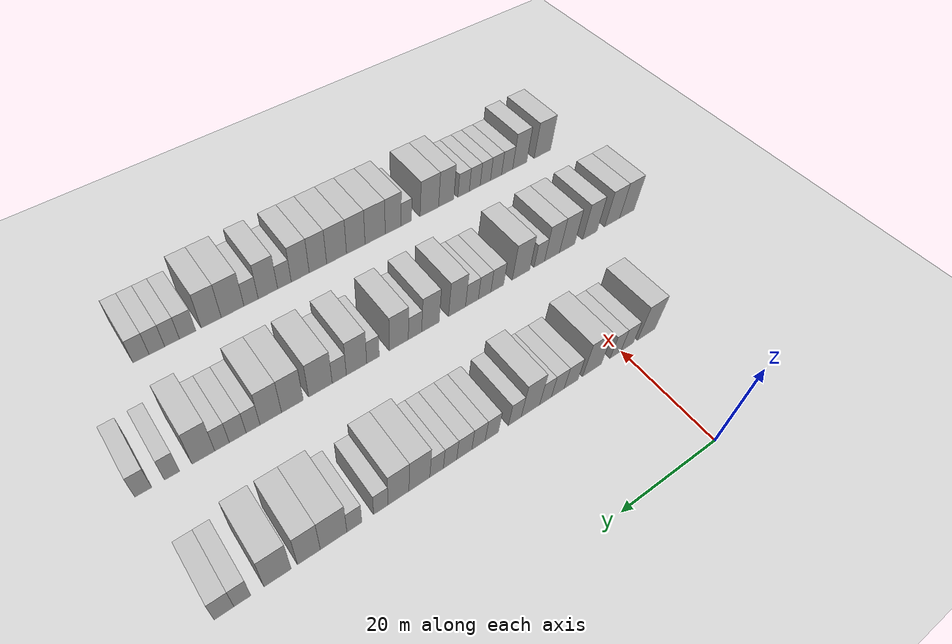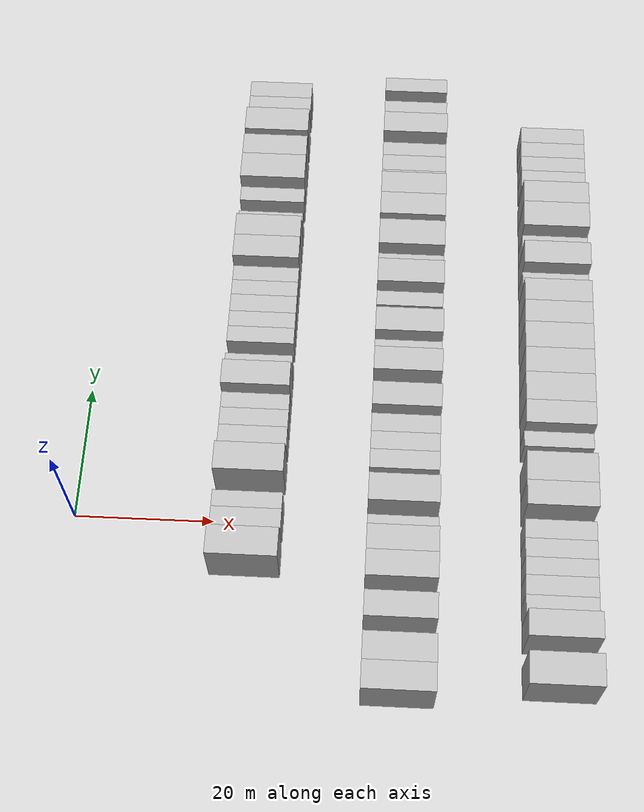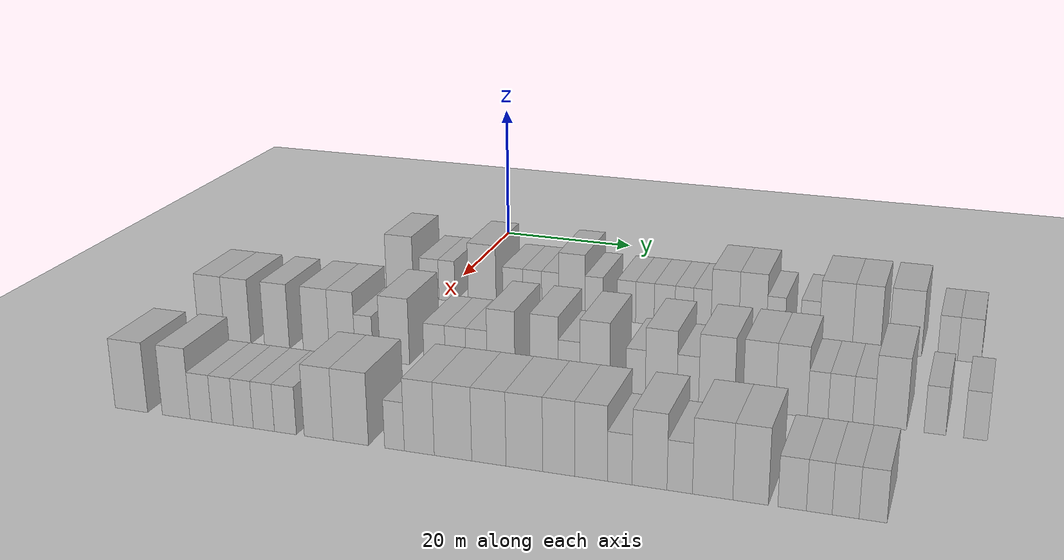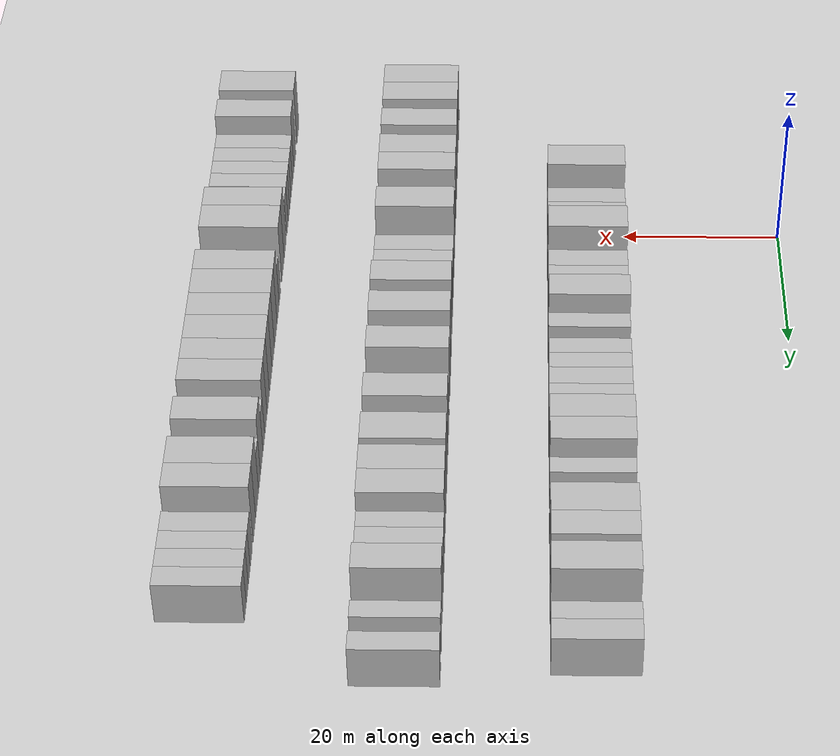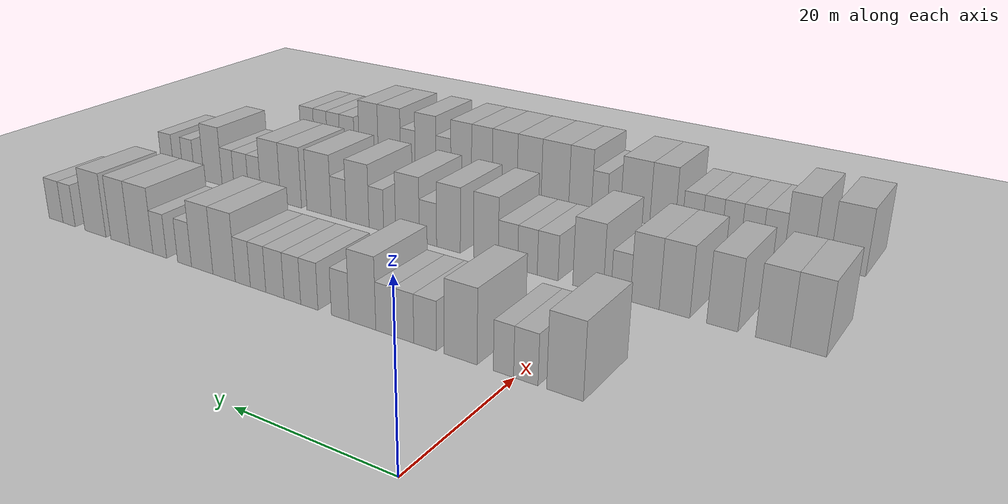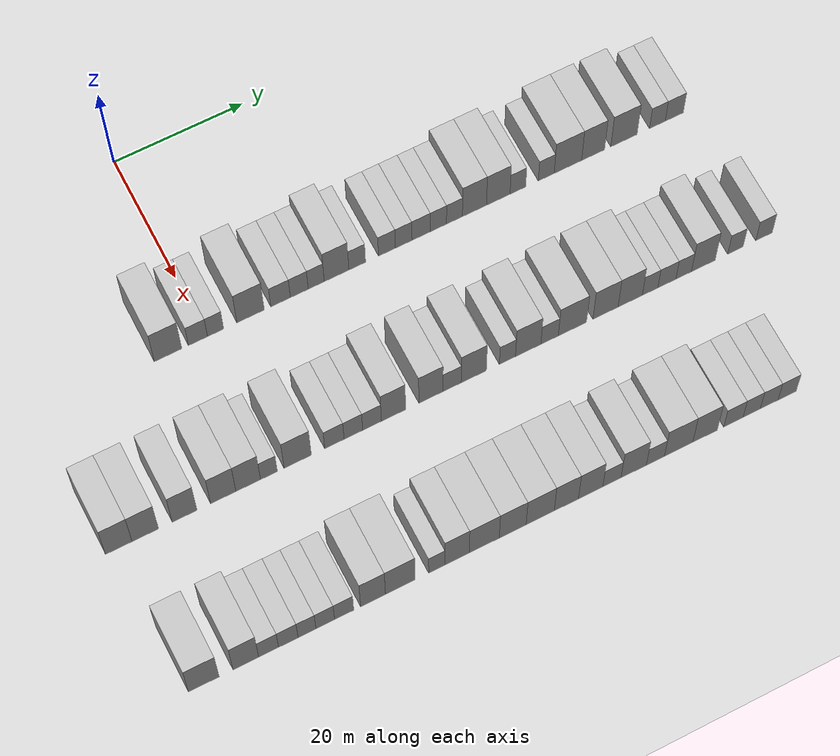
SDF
<sdf version="1.6">
 <world name="default">
  <include><name>ground_plane_1</name><uri>model://HANNAS_ground_plane</uri></include>
  <model name="building_83">
   <static>1</static>
   <pose>25.0000 -5.8344 0 0.000000 0.000000 0.000000</pose>
   <link name="link">
    <pose>0 0 4.50 0 0 0</pose>
    <collision name="collision"><geometry><box><size>10.0000 4.1621 9.0000</size></box></geometry></collision>
    <visual name="visual">
     <cast_shadows>0</cast_shadows>
     <geometry><box><size>10.0000 4.1621 9.0000</size></box></geometry>
     <material>
      <script>
       <uri>model://HANNAS_wall/materials/scripts</uri>
       <uri>model://HANNAS_wall/materials/textures</uri>
       <name>vrc/HANNAS_wall</name>
      </script>
     </material>
    </visual>
   </link>
  </model>
  <model name="building_84">
   <static>1</static>
   <pose>25.0000 -1.3093 0 0.000000 0.000000 0.000000</pose>
   <link name="link">
    <pose>0 0 3.00 0 0 0</pose>
    <collision name="collision"><geometry><box><size>10.0000 2.8879 6.0000</size></box></geometry></collision>
    <visual name="visual">
     <cast_shadows>0</cast_shadows>
     <geometry><box><size>10.0000 2.8879 6.0000</size></box></geometry>
     <material>
      <script>
       <uri>model://HANNAS_wall/materials/scripts</uri>
       <uri>model://HANNAS_wall/materials/textures</uri>
       <name>vrc/HANNAS_wall</name>
      </script>
     </material>
    </visual>
   </link>
  </model>
  <model name="building_85">
   <static>1</static>
   <pose>25.0000 1.3610 0 0.000000 0.000000 0.000000</pose>
   <link name="link">
    <pose>0 0 3.00 0 0 0</pose>
    <collision name="collision"><geometry><box><size>10.0000 2.4527 6.0000</size></box></geometry></collision>
    <visual name="visual">
     <cast_shadows>0</cast_shadows>
     <geometry><box><size>10.0000 2.4527 6.0000</size></box></geometry>
     <material>
      <script>
       <uri>model://HANNAS_wall/materials/scripts</uri>
       <uri>model://HANNAS_wall/materials/textures</uri>
       <name>vrc/HANNAS_wall</name>
      </script>
     </material>
    </visual>
   </link>
  </model>
  <model name="building_86">
   <static>1</static>
   <pose>25.0000 6.6766 0 0.000000 0.000000 0.000000</pose>
   <link name="link">
    <pose>0 0 4.50 0 0 0</pose>
    <collision name="collision"><geometry><box><size>10.0000 4.1785 9.0000</size></box></geometry></collision>
    <visual name="visual">
     <cast_shadows>0</cast_shadows>
     <geometry><box><size>10.0000 4.1785 9.0000</size></box></geometry>
     <material>
      <script>
       <uri>model://HANNAS_wall/materials/scripts</uri>
       <uri>model://HANNAS_wall/materials/textures</uri>
       <name>vrc/HANNAS_wall</name>
      </script>
     </material>
    </visual>
   </link>
  </model>
  <model name="building_87">
   <static>1</static>
   <pose>25.0000 11.2618 0 0.000000 0.000000 0.000000</pose>
   <link name="link">
    <pose>0 0 3.00 0 0 0</pose>
    <collision name="collision"><geometry><box><size>10.0000 2.9920 6.0000</size></box></geometry></collision>
    <visual name="visual">
     <cast_shadows>0</cast_shadows>
     <geometry><box><size>10.0000 2.9920 6.0000</size></box></geometry>
     <material>
      <script>
       <uri>model://HANNAS_wall/materials/scripts</uri>
       <uri>model://HANNAS_wall/materials/textures</uri>
       <name>vrc/HANNAS_wall</name>
      </script>
     </material>
    </visual>
   </link>
  </model>
  <model name="building_88">
   <static>1</static>
   <pose>25.0000 14.1272 0 0.000000 0.000000 0.000000</pose>
   <link name="link">
    <pose>0 0 3.00 0 0 0</pose>
    <collision name="collision"><geometry><box><size>10.0000 2.7387 6.0000</size></box></geometry></collision>
    <visual name="visual">
     <cast_shadows>0</cast_shadows>
     <geometry><box><size>10.0000 2.7387 6.0000</size></box></geometry>
     <material>
      <script>
       <uri>model://HANNAS_wall/materials/scripts</uri>
       <uri>model://HANNAS_wall/materials/textures</uri>
       <name>vrc/HANNAS_wall</name>
      </script>
     </material>
    </visual>
   </link>
  </model>
  <model name="building_89">
   <static>1</static>
   <pose>25.0000 16.7258 0 0.000000 0.000000 0.000000</pose>
   <link name="link">
    <pose>0 0 3.00 0 0 0</pose>
    <collision name="collision"><geometry><box><size>10.0000 2.4585 6.0000</size></box></geometry></collision>
    <visual name="visual">
     <cast_shadows>0</cast_shadows>
     <geometry><box><size>10.0000 2.4585 6.0000</size></box></geometry>
     <material>
      <script>
       <uri>model://HANNAS_wall/materials/scripts</uri>
       <uri>model://HANNAS_wall/materials/textures</uri>
       <name>vrc/HANNAS_wall</name>
      </script>
     </material>
    </visual>
   </link>
  </model>
  <model name="building_90">
   <static>1</static>
   <pose>25.0000 19.8600 0 0.000000 0.000000 0.000000</pose>
   <link name="link">
    <pose>0 0 4.50 0 0 0</pose>
    <collision name="collision"><geometry><box><size>10.0000 3.8098 9.0000</size></box></geometry></collision>
    <visual name="visual">
     <cast_shadows>0</cast_shadows>
     <geometry><box><size>10.0000 3.8098 9.0000</size></box></geometry>
     <material>
      <script>
       <uri>model://HANNAS_wall/materials/scripts</uri>
       <uri>model://HANNAS_wall/materials/textures</uri>
       <name>vrc/HANNAS_wall</name>
      </script>
     </material>
    </visual>
   </link>
  </model>
  <model name="building_91">
   <static>1</static>
   <pose>25.0000 23.0571 0 0.000000 0.000000 0.000000</pose>
   <link name="link">
    <pose>0 0 3.00 0 0 0</pose>
    <collision name="collision"><geometry><box><size>10.0000 2.5845 6.0000</size></box></geometry></collision>
    <visual name="visual">
     <cast_shadows>0</cast_shadows>
     <geometry><box><size>10.0000 2.5845 6.0000</size></box></geometry>
     <material>
      <script>
       <uri>model://HANNAS_wall/materials/scripts</uri>
       <uri>model://HANNAS_wall/materials/textures</uri>
       <name>vrc/HANNAS_wall</name>
      </script>
     </material>
    </visual>
   </link>
  </model>
  <model name="building_92">
   <static>1</static>
   <pose>25.0000 27.6592 0 0.000000 0.000000 0.000000</pose>
   <link name="link">
    <pose>0 0 3.00 0 0 0</pose>
    <collision name="collision"><geometry><box><size>10.0000 2.6197 6.0000</size></box></geometry></collision>
    <visual name="visual">
     <cast_shadows>0</cast_shadows>
     <geometry><box><size>10.0000 2.6197 6.0000</size></box></geometry>
     <material>
      <script>
       <uri>model://HANNAS_wall/materials/scripts</uri>
       <uri>model://HANNAS_wall/materials/textures</uri>
       <name>vrc/HANNAS_wall</name>
      </script>
     </material>
    </visual>
   </link>
  </model>
  <model name="building_93">
   <static>1</static>
   <pose>25.0000 30.2643 0 0.000000 0.000000 0.000000</pose>
   <link name="link">
    <pose>0 0 3.00 0 0 0</pose>
    <collision name="collision"><geometry><box><size>10.0000 2.5906 6.0000</size></box></geometry></collision>
    <visual name="visual">
     <cast_shadows>0</cast_shadows>
     <geometry><box><size>10.0000 2.5906 6.0000</size></box></geometry>
     <material>
      <script>
       <uri>model://HANNAS_wall/materials/scripts</uri>
       <uri>model://HANNAS_wall/materials/textures</uri>
       <name>vrc/HANNAS_wall</name>
      </script>
     </material>
    </visual>
   </link>
  </model>
  <model name="building_94">
   <static>1</static>
   <pose>25.0000 33.0000 0 0.000000 0.000000 0.000000</pose>
   <link name="link">
    <pose>0 0 3.00 0 0 0</pose>
    <collision name="collision"><geometry><box><size>10.0000 2.8807 6.0000</size></box></geometry></collision>
    <visual name="visual">
     <cast_shadows>0</cast_shadows>
     <geometry><box><size>10.0000 2.8807 6.0000</size></box></geometry>
     <material>
      <script>
       <uri>model://HANNAS_wall/materials/scripts</uri>
       <uri>model://HANNAS_wall/materials/textures</uri>
       <name>vrc/HANNAS_wall</name>
      </script>
     </material>
    </visual>
   </link>
  </model>
  <model name="building_95">
   <static>1</static>
   <pose>25.0000 35.6938 0 0.000000 0.000000 0.000000</pose>
   <link name="link">
    <pose>0 0 3.00 0 0 0</pose>
    <collision name="collision"><geometry><box><size>10.0000 2.5071 6.0000</size></box></geometry></collision>
    <visual name="visual">
     <cast_shadows>0</cast_shadows>
     <geometry><box><size>10.0000 2.5071 6.0000</size></box></geometry>
     <material>
      <script>
       <uri>model://HANNAS_wall/materials/scripts</uri>
       <uri>model://HANNAS_wall/materials/textures</uri>
       <name>vrc/HANNAS_wall</name>
      </script>
     </material>
    </visual>
   </link>
  </model>
  <model name="building_96">
   <static>1</static>
   <pose>25.0000 38.1934 0 0.000000 0.000000 0.000000</pose>
   <link name="link">
    <pose>0 0 3.00 0 0 0</pose>
    <collision name="collision"><geometry><box><size>10.0000 2.4921 6.0000</size></box></geometry></collision>
    <visual name="visual">
     <cast_shadows>0</cast_shadows>
     <geometry><box><size>10.0000 2.4921 6.0000</size></box></geometry>
     <material>
      <script>
       <uri>model://HANNAS_wall/materials/scripts</uri>
       <uri>model://HANNAS_wall/materials/textures</uri>
       <name>vrc/HANNAS_wall</name>
      </script>
     </material>
    </visual>
   </link>
  </model>
  <model name="building_97">
   <static>1</static>
   <pose>25.0000 41.3327 0 0.000000 0.000000 0.000000</pose>
   <link name="link">
    <pose>0 0 4.50 0 0 0</pose>
    <collision name="collision"><geometry><box><size>10.0000 3.7866 9.0000</size></box></geometry></collision>
    <visual name="visual">
     <cast_shadows>0</cast_shadows>
     <geometry><box><size>10.0000 3.7866 9.0000</size></box></geometry>
     <material>
      <script>
       <uri>model://HANNAS_wall/materials/scripts</uri>
       <uri>model://HANNAS_wall/materials/textures</uri>
       <name>vrc/HANNAS_wall</name>
      </script>
     </material>
    </visual>
   </link>
  </model>
  <model name="building_98">
   <static>1</static>
   <pose>25.0000 45.0840 0 0.000000 0.000000 0.000000</pose>
   <link name="link">
    <pose>0 0 4.50 0 0 0</pose>
    <collision name="collision"><geometry><box><size>10.0000 3.7160 9.0000</size></box></geometry></collision>
    <visual name="visual">
     <cast_shadows>0</cast_shadows>
     <geometry><box><size>10.0000 3.7160 9.0000</size></box></geometry>
     <material>
      <script>
       <uri>model://HANNAS_wall/materials/scripts</uri>
       <uri>model://HANNAS_wall/materials/textures</uri>
       <name>vrc/HANNAS_wall</name>
      </script>
     </material>
    </visual>
   </link>
  </model>
  <model name="building_99">
   <static>1</static>
   <pose>25.0000 48.1846 0 0.000000 0.000000 0.000000</pose>
   <link name="link">
    <pose>0 0 3.00 0 0 0</pose>
    <collision name="collision"><geometry><box><size>10.0000 2.4852 6.0000</size></box></geometry></collision>
    <visual name="visual">
     <cast_shadows>0</cast_shadows>
     <geometry><box><size>10.0000 2.4852 6.0000</size></box></geometry>
     <material>
      <script>
       <uri>model://HANNAS_wall/materials/scripts</uri>
       <uri>model://HANNAS_wall/materials/textures</uri>
       <name>vrc/HANNAS_wall</name>
      </script>
     </material>
    </visual>
   </link>
  </model>
  <model name="building_100">
   <static>1</static>
   <pose>25.0000 52.6859 0 0.000000 0.000000 0.000000</pose>
   <link name="link">
    <pose>0 0 3.00 0 0 0</pose>
    <collision name="collision"><geometry><box><size>10.0000 2.5173 6.0000</size></box></geometry></collision>
    <visual name="visual">
     <cast_shadows>0</cast_shadows>
     <geometry><box><size>10.0000 2.5173 6.0000</size></box></geometry>
     <material>
      <script>
       <uri>model://HANNAS_wall/materials/scripts</uri>
       <uri>model://HANNAS_wall/materials/textures</uri>
       <name>vrc/HANNAS_wall</name>
      </script>
     </material>
    </visual>
   </link>
  </model>
  <model name="building_101">
   <static>1</static>
   <pose>25.0000 56.1383 0 0.000000 0.000000 0.000000</pose>
   <link name="link">
    <pose>0 0 4.50 0 0 0</pose>
    <collision name="collision"><geometry><box><size>10.0000 4.3876 9.0000</size></box></geometry></collision>
    <visual name="visual">
     <cast_shadows>0</cast_shadows>
     <geometry><box><size>10.0000 4.3876 9.0000</size></box></geometry>
     <material>
      <script>
       <uri>model://HANNAS_wall/materials/scripts</uri>
       <uri>model://HANNAS_wall/materials/textures</uri>
       <name>vrc/HANNAS_wall</name>
      </script>
     </material>
    </visual>
   </link>
  </model>
  <model name="building_102">
   <static>1</static>
   <pose>25.0000 60.1665 0 0.000000 0.000000 0.000000</pose>
   <link name="link">
    <pose>0 0 4.50 0 0 0</pose>
    <collision name="collision"><geometry><box><size>10.0000 3.6688 9.0000</size></box></geometry></collision>
    <visual name="visual">
     <cast_shadows>0</cast_shadows>
     <geometry><box><size>10.0000 3.6688 9.0000</size></box></geometry>
     <material>
      <script>
       <uri>model://HANNAS_wall/materials/scripts</uri>
       <uri>model://HANNAS_wall/materials/textures</uri>
       <name>vrc/HANNAS_wall</name>
      </script>
     </material>
    </visual>
   </link>
  </model>
  <model name="building_103">
   <static>1</static>
   <pose>25.0000 65.1158 0 0.000000 0.000000 0.000000</pose>
   <link name="link">
    <pose>0 0 4.50 0 0 0</pose>
    <collision name="collision"><geometry><box><size>10.0000 4.2298 9.0000</size></box></geometry></collision>
    <visual name="visual">
     <cast_shadows>0</cast_shadows>
     <geometry><box><size>10.0000 4.2298 9.0000</size></box></geometry>
     <material>
      <script>
       <uri>model://HANNAS_wall/materials/scripts</uri>
       <uri>model://HANNAS_wall/materials/textures</uri>
       <name>vrc/HANNAS_wall</name>
      </script>
     </material>
    </visual>
   </link>
  </model>
  <model name="building_104">
   <static>1</static>
   <pose>25.0000 70.5004 0 0.000000 0.000000 0.000000</pose>
   <link name="link">
    <pose>0 0 3.00 0 0 0</pose>
    <collision name="collision"><geometry><box><size>10.0000 2.5395 6.0000</size></box></geometry></collision>
    <visual name="visual">
     <cast_shadows>0</cast_shadows>
     <geometry><box><size>10.0000 2.5395 6.0000</size></box></geometry>
     <material>
      <script>
       <uri>model://HANNAS_wall/materials/scripts</uri>
       <uri>model://HANNAS_wall/materials/textures</uri>
       <name>vrc/HANNAS_wall</name>
      </script>
     </material>
    </visual>
   </link>
  </model>
  <model name="building_105">
   <static>1</static>
   <pose>25.0000 73.2379 0 0.000000 0.000000 0.000000</pose>
   <link name="link">
    <pose>0 0 3.00 0 0 0</pose>
    <collision name="collision"><geometry><box><size>10.0000 2.9355 6.0000</size></box></geometry></collision>
    <visual name="visual">
     <cast_shadows>0</cast_shadows>
     <geometry><box><size>10.0000 2.9355 6.0000</size></box></geometry>
     <material>
      <script>
       <uri>model://HANNAS_wall/materials/scripts</uri>
       <uri>model://HANNAS_wall/materials/textures</uri>
       <name>vrc/HANNAS_wall</name>
      </script>
     </material>
    </visual>
   </link>
  </model>
  <model name="building_272">
   <static>1</static>
   <pose>47.0000 -23.4368 0 0.000000 0.000000 0.000000</pose>
   <link name="link">
    <pose>0 0 4.50 0 0 0</pose>
    <collision name="collision"><geometry><box><size>10.0000 3.8887 9.0000</size></box></geometry></collision>
    <visual name="visual">
     <cast_shadows>0</cast_shadows>
     <geometry><box><size>10.0000 3.8887 9.0000</size></box></geometry>
     <material>
      <script>
       <uri>model://HANNAS_wall/materials/scripts</uri>
       <uri>model://HANNAS_wall/materials/textures</uri>
       <name>vrc/HANNAS_wall</name>
      </script>
     </material>
    </visual>
   </link>
  </model>
  <model name="building_273">
   <static>1</static>
   <pose>47.0000 -19.5546 0 0.000000 0.000000 0.000000</pose>
   <link name="link">
    <pose>0 0 4.50 0 0 0</pose>
    <collision name="collision"><geometry><box><size>10.0000 3.8759 9.0000</size></box></geometry></collision>
    <visual name="visual">
     <cast_shadows>0</cast_shadows>
     <geometry><box><size>10.0000 3.8759 9.0000</size></box></geometry>
     <material>
      <script>
       <uri>model://HANNAS_wall/materials/scripts</uri>
       <uri>model://HANNAS_wall/materials/textures</uri>
       <name>vrc/HANNAS_wall</name>
      </script>
     </material>
    </visual>
   </link>
  </model>
  <model name="building_274">
   <static>1</static>
   <pose>47.0000 -13.7886 0 0.000000 0.000000 0.000000</pose>
   <link name="link">
    <pose>0 0 4.50 0 0 0</pose>
    <collision name="collision"><geometry><box><size>10.0000 3.6560 9.0000</size></box></geometry></collision>
    <visual name="visual">
     <cast_shadows>0</cast_shadows>
     <geometry><box><size>10.0000 3.6560 9.0000</size></box></geometry>
     <material>
      <script>
       <uri>model://HANNAS_wall/materials/scripts</uri>
       <uri>model://HANNAS_wall/materials/textures</uri>
       <name>vrc/HANNAS_wall</name>
      </script>
     </material>
    </visual>
   </link>
  </model>
  <model name="building_275">
   <static>1</static>
   <pose>47.0000 -8.0851 0 0.000000 0.000000 0.000000</pose>
   <link name="link">
    <pose>0 0 4.50 0 0 0</pose>
    <collision name="collision"><geometry><box><size>10.0000 3.7511 9.0000</size></box></geometry></collision>
    <visual name="visual">
     <cast_shadows>0</cast_shadows>
     <geometry><box><size>10.0000 3.7511 9.0000</size></box></geometry>
     <material>
      <script>
       <uri>model://HANNAS_wall/materials/scripts</uri>
       <uri>model://HANNAS_wall/materials/textures</uri>
       <name>vrc/HANNAS_wall</name>
      </script>
     </material>
    </visual>
   </link>
  </model>
  <model name="building_276">
   <static>1</static>
   <pose>47.0000 -4.3848 0 0.000000 0.000000 0.000000</pose>
   <link name="link">
    <pose>0 0 4.50 0 0 0</pose>
    <collision name="collision"><geometry><box><size>10.0000 3.6494 9.0000</size></box></geometry></collision>
    <visual name="visual">
     <cast_shadows>0</cast_shadows>
     <geometry><box><size>10.0000 3.6494 9.0000</size></box></geometry>
     <material>
      <script>
       <uri>model://HANNAS_wall/materials/scripts</uri>
       <uri>model://HANNAS_wall/materials/textures</uri>
       <name>vrc/HANNAS_wall</name>
      </script>
     </material>
    </visual>
   </link>
  </model>
  <model name="building_277">
   <static>1</static>
   <pose>47.0000 -1.3017 0 0.000000 0.000000 0.000000</pose>
   <link name="link">
    <pose>0 0 3.00 0 0 0</pose>
    <collision name="collision"><geometry><box><size>10.0000 2.5169 6.0000</size></box></geometry></collision>
    <visual name="visual">
     <cast_shadows>0</cast_shadows>
     <geometry><box><size>10.0000 2.5169 6.0000</size></box></geometry>
     <material>
      <script>
       <uri>model://HANNAS_wall/materials/scripts</uri>
       <uri>model://HANNAS_wall/materials/textures</uri>
       <name>vrc/HANNAS_wall</name>
      </script>
     </material>
    </visual>
   </link>
  </model>
  <model name="building_278">
   <static>1</static>
   <pose>47.0000 2.9999 0 0.000000 0.000000 0.000000</pose>
   <link name="link">
    <pose>0 0 4.50 0 0 0</pose>
    <collision name="collision"><geometry><box><size>10.0000 4.0862 9.0000</size></box></geometry></collision>
    <visual name="visual">
     <cast_shadows>0</cast_shadows>
     <geometry><box><size>10.0000 4.0862 9.0000</size></box></geometry>
     <material>
      <script>
       <uri>model://HANNAS_wall/materials/scripts</uri>
       <uri>model://HANNAS_wall/materials/textures</uri>
       <name>vrc/HANNAS_wall</name>
      </script>
     </material>
    </visual>
   </link>
  </model>
  <model name="building_279">
   <static>1</static>
   <pose>47.0000 8.5021 0 0.000000 0.000000 0.000000</pose>
   <link name="link">
    <pose>0 0 3.00 0 0 0</pose>
    <collision name="collision"><geometry><box><size>10.0000 2.9183 6.0000</size></box></geometry></collision>
    <visual name="visual">
     <cast_shadows>0</cast_shadows>
     <geometry><box><size>10.0000 2.9183 6.0000</size></box></geometry>
     <material>
      <script>
       <uri>model://HANNAS_wall/materials/scripts</uri>
       <uri>model://HANNAS_wall/materials/textures</uri>
       <name>vrc/HANNAS_wall</name>
      </script>
     </material>
    </visual>
   </link>
  </model>
  <model name="building_280">
   <static>1</static>
   <pose>47.0000 11.3632 0 0.000000 0.000000 0.000000</pose>
   <link name="link">
    <pose>0 0 3.00 0 0 0</pose>
    <collision name="collision"><geometry><box><size>10.0000 2.8037 6.0000</size></box></geometry></collision>
    <visual name="visual">
     <cast_shadows>0</cast_shadows>
     <geometry><box><size>10.0000 2.8037 6.0000</size></box></geometry>
     <material>
      <script>
       <uri>model://HANNAS_wall/materials/scripts</uri>
       <uri>model://HANNAS_wall/materials/textures</uri>
       <name>vrc/HANNAS_wall</name>
      </script>
     </material>
    </visual>
   </link>
  </model>
  <model name="building_281">
   <static>1</static>
   <pose>47.0000 14.1849 0 0.000000 0.000000 0.000000</pose>
   <link name="link">
    <pose>0 0 3.00 0 0 0</pose>
    <collision name="collision"><geometry><box><size>10.0000 2.8398 6.0000</size></box></geometry></collision>
    <visual name="visual">
     <cast_shadows>0</cast_shadows>
     <geometry><box><size>10.0000 2.8398 6.0000</size></box></geometry>
     <material>
      <script>
       <uri>model://HANNAS_wall/materials/scripts</uri>
       <uri>model://HANNAS_wall/materials/textures</uri>
       <name>vrc/HANNAS_wall</name>
      </script>
     </material>
    </visual>
   </link>
  </model>
  <model name="building_282">
   <static>1</static>
   <pose>47.0000 17.4460 0 0.000000 0.000000 0.000000</pose>
   <link name="link">
    <pose>0 0 4.50 0 0 0</pose>
    <collision name="collision"><geometry><box><size>10.0000 3.6824 9.0000</size></box></geometry></collision>
    <visual name="visual">
     <cast_shadows>0</cast_shadows>
     <geometry><box><size>10.0000 3.6824 9.0000</size></box></geometry>
     <material>
      <script>
       <uri>model://HANNAS_wall/materials/scripts</uri>
       <uri>model://HANNAS_wall/materials/textures</uri>
       <name>vrc/HANNAS_wall</name>
      </script>
     </material>
    </visual>
   </link>
  </model>
  <model name="building_283">
   <static>1</static>
   <pose>47.0000 23.1339 0 0.000000 0.000000 0.000000</pose>
   <link name="link">
    <pose>0 0 4.50 0 0 0</pose>
    <collision name="collision"><geometry><box><size>10.0000 3.6933 9.0000</size></box></geometry></collision>
    <visual name="visual">
     <cast_shadows>0</cast_shadows>
     <geometry><box><size>10.0000 3.6933 9.0000</size></box></geometry>
     <material>
      <script>
       <uri>model://HANNAS_wall/materials/scripts</uri>
       <uri>model://HANNAS_wall/materials/textures</uri>
       <name>vrc/HANNAS_wall</name>
      </script>
     </material>
    </visual>
   </link>
  </model>
  <model name="building_284">
   <static>1</static>
   <pose>47.0000 26.3582 0 0.000000 0.000000 0.000000</pose>
   <link name="link">
    <pose>0 0 3.00 0 0 0</pose>
    <collision name="collision"><geometry><box><size>10.0000 2.7552 6.0000</size></box></geometry></collision>
    <visual name="visual">
     <cast_shadows>0</cast_shadows>
     <geometry><box><size>10.0000 2.7552 6.0000</size></box></geometry>
     <material>
      <script>
       <uri>model://HANNAS_wall/materials/scripts</uri>
       <uri>model://HANNAS_wall/materials/textures</uri>
       <name>vrc/HANNAS_wall</name>
      </script>
     </material>
    </visual>
   </link>
  </model>
  <model name="building_285">
   <static>1</static>
   <pose>47.0000 29.6720 0 0.000000 0.000000 0.000000</pose>
   <link name="link">
    <pose>0 0 4.50 0 0 0</pose>
    <collision name="collision"><geometry><box><size>10.0000 3.8724 9.0000</size></box></geometry></collision>
    <visual name="visual">
     <cast_shadows>0</cast_shadows>
     <geometry><box><size>10.0000 3.8724 9.0000</size></box></geometry>
     <material>
      <script>
       <uri>model://HANNAS_wall/materials/scripts</uri>
       <uri>model://HANNAS_wall/materials/textures</uri>
       <name>vrc/HANNAS_wall</name>
      </script>
     </material>
    </visual>
   </link>
  </model>
  <model name="building_286">
   <static>1</static>
   <pose>47.0000 34.8447 0 0.000000 0.000000 0.000000</pose>
   <link name="link">
    <pose>0 0 3.00 0 0 0</pose>
    <collision name="collision"><geometry><box><size>10.0000 2.4729 6.0000</size></box></geometry></collision>
    <visual name="visual">
     <cast_shadows>0</cast_shadows>
     <geometry><box><size>10.0000 2.4729 6.0000</size></box></geometry>
     <material>
      <script>
       <uri>model://HANNAS_wall/materials/scripts</uri>
       <uri>model://HANNAS_wall/materials/textures</uri>
       <name>vrc/HANNAS_wall</name>
      </script>
     </material>
    </visual>
   </link>
  </model>
  <model name="building_287">
   <static>1</static>
   <pose>47.0000 38.0523 0 0.000000 0.000000 0.000000</pose>
   <link name="link">
    <pose>0 0 4.50 0 0 0</pose>
    <collision name="collision"><geometry><box><size>10.0000 3.9423 9.0000</size></box></geometry></collision>
    <visual name="visual">
     <cast_shadows>0</cast_shadows>
     <geometry><box><size>10.0000 3.9423 9.0000</size></box></geometry>
     <material>
      <script>
       <uri>model://HANNAS_wall/materials/scripts</uri>
       <uri>model://HANNAS_wall/materials/textures</uri>
       <name>vrc/HANNAS_wall</name>
      </script>
     </material>
    </visual>
   </link>
  </model>
  <model name="building_288">
   <static>1</static>
   <pose>47.0000 41.3720 0 0.000000 0.000000 0.000000</pose>
   <link name="link">
    <pose>0 0 3.00 0 0 0</pose>
    <collision name="collision"><geometry><box><size>10.0000 2.6973 6.0000</size></box></geometry></collision>
    <visual name="visual">
     <cast_shadows>0</cast_shadows>
     <geometry><box><size>10.0000 2.6973 6.0000</size></box></geometry>
     <material>
      <script>
       <uri>model://HANNAS_wall/materials/scripts</uri>
       <uri>model://HANNAS_wall/materials/textures</uri>
       <name>vrc/HANNAS_wall</name>
      </script>
     </material>
    </visual>
   </link>
  </model>
  <model name="building_289">
   <static>1</static>
   <pose>47.0000 44.9165 0 0.000000 0.000000 0.000000</pose>
   <link name="link">
    <pose>0 0 4.50 0 0 0</pose>
    <collision name="collision"><geometry><box><size>10.0000 4.3916 9.0000</size></box></geometry></collision>
    <visual name="visual">
     <cast_shadows>0</cast_shadows>
     <geometry><box><size>10.0000 4.3916 9.0000</size></box></geometry>
     <material>
      <script>
       <uri>model://HANNAS_wall/materials/scripts</uri>
       <uri>model://HANNAS_wall/materials/textures</uri>
       <name>vrc/HANNAS_wall</name>
      </script>
     </material>
    </visual>
   </link>
  </model>
  <model name="building_290">
   <static>1</static>
   <pose>47.0000 50.0776 0 0.000000 0.000000 0.000000</pose>
   <link name="link">
    <pose>0 0 4.50 0 0 0</pose>
    <collision name="collision"><geometry><box><size>10.0000 3.9307 9.0000</size></box></geometry></collision>
    <visual name="visual">
     <cast_shadows>0</cast_shadows>
     <geometry><box><size>10.0000 3.9307 9.0000</size></box></geometry>
     <material>
      <script>
       <uri>model://HANNAS_wall/materials/scripts</uri>
       <uri>model://HANNAS_wall/materials/textures</uri>
       <name>vrc/HANNAS_wall</name>
      </script>
     </material>
    </visual>
   </link>
  </model>
  <model name="building_291">
   <static>1</static>
   <pose>47.0000 53.9471 0 0.000000 0.000000 0.000000</pose>
   <link name="link">
    <pose>0 0 4.50 0 0 0</pose>
    <collision name="collision"><geometry><box><size>10.0000 3.8083 9.0000</size></box></geometry></collision>
    <visual name="visual">
     <cast_shadows>0</cast_shadows>
     <geometry><box><size>10.0000 3.8083 9.0000</size></box></geometry>
     <material>
      <script>
       <uri>model://HANNAS_wall/materials/scripts</uri>
       <uri>model://HANNAS_wall/materials/textures</uri>
       <name>vrc/HANNAS_wall</name>
      </script>
     </material>
    </visual>
   </link>
  </model>
  <model name="building_292">
   <static>1</static>
   <pose>47.0000 57.0696 0 0.000000 0.000000 0.000000</pose>
   <link name="link">
    <pose>0 0 3.00 0 0 0</pose>
    <collision name="collision"><geometry><box><size>10.0000 2.4366 6.0000</size></box></geometry></collision>
    <visual name="visual">
     <cast_shadows>0</cast_shadows>
     <geometry><box><size>10.0000 2.4366 6.0000</size></box></geometry>
     <material>
      <script>
       <uri>model://HANNAS_wall/materials/scripts</uri>
       <uri>model://HANNAS_wall/materials/textures</uri>
       <name>vrc/HANNAS_wall</name>
      </script>
     </material>
    </visual>
   </link>
  </model>
  <model name="building_293">
   <static>1</static>
   <pose>47.0000 59.7203 0 0.000000 0.000000 0.000000</pose>
   <link name="link">
    <pose>0 0 3.00 0 0 0</pose>
    <collision name="collision"><geometry><box><size>10.0000 2.8649 6.0000</size></box></geometry></collision>
    <visual name="visual">
     <cast_shadows>0</cast_shadows>
     <geometry><box><size>10.0000 2.8649 6.0000</size></box></geometry>
     <material>
      <script>
       <uri>model://HANNAS_wall/materials/scripts</uri>
       <uri>model://HANNAS_wall/materials/textures</uri>
       <name>vrc/HANNAS_wall</name>
      </script>
     </material>
    </visual>
   </link>
  </model>
  <model name="building_294">
   <static>1</static>
   <pose>47.0000 62.3791 0 0.000000 0.000000 0.000000</pose>
   <link name="link">
    <pose>0 0 3.00 0 0 0</pose>
    <collision name="collision"><geometry><box><size>10.0000 2.4527 6.0000</size></box></geometry></collision>
    <visual name="visual">
     <cast_shadows>0</cast_shadows>
     <geometry><box><size>10.0000 2.4527 6.0000</size></box></geometry>
     <material>
      <script>
       <uri>model://HANNAS_wall/materials/scripts</uri>
       <uri>model://HANNAS_wall/materials/textures</uri>
       <name>vrc/HANNAS_wall</name>
      </script>
     </material>
    </visual>
   </link>
  </model>
  <model name="building_295">
   <static>1</static>
   <pose>47.0000 65.4889 0 0.000000 0.000000 0.000000</pose>
   <link name="link">
    <pose>0 0 4.50 0 0 0</pose>
    <collision name="collision"><geometry><box><size>10.0000 3.7669 9.0000</size></box></geometry></collision>
    <visual name="visual">
     <cast_shadows>0</cast_shadows>
     <geometry><box><size>10.0000 3.7669 9.0000</size></box></geometry>
     <material>
      <script>
       <uri>model://HANNAS_wall/materials/scripts</uri>
       <uri>model://HANNAS_wall/materials/textures</uri>
       <name>vrc/HANNAS_wall</name>
      </script>
     </material>
    </visual>
   </link>
  </model>
  <model name="building_296">
   <static>1</static>
   <pose>47.0000 70.6024 0 0.000000 0.000000 0.000000</pose>
   <link name="link">
    <pose>0 0 3.00 0 0 0</pose>
    <collision name="collision"><geometry><box><size>10.0000 2.4601 6.0000</size></box></geometry></collision>
    <visual name="visual">
     <cast_shadows>0</cast_shadows>
     <geometry><box><size>10.0000 2.4601 6.0000</size></box></geometry>
     <material>
      <script>
       <uri>model://HANNAS_wall/materials/scripts</uri>
       <uri>model://HANNAS_wall/materials/textures</uri>
       <name>vrc/HANNAS_wall</name>
      </script>
     </material>
    </visual>
   </link>
  </model>
  <model name="building_297">
   <static>1</static>
   <pose>47.0000 75.1563 0 0.000000 0.000000 0.000000</pose>
   <link name="link">
    <pose>0 0 3.00 0 0 0</pose>
    <collision name="collision"><geometry><box><size>10.0000 2.6477 6.0000</size></box></geometry></collision>
    <visual name="visual">
     <cast_shadows>0</cast_shadows>
     <geometry><box><size>10.0000 2.6477 6.0000</size></box></geometry>
     <material>
      <script>
       <uri>model://HANNAS_wall/materials/scripts</uri>
       <uri>model://HANNAS_wall/materials/textures</uri>
       <name>vrc/HANNAS_wall</name>
      </script>
     </material>
    </visual>
   </link>
  </model>
  <model name="building_458">
   <static>1</static>
   <pose>69.0000 -21.4822 0 0.000000 0.000000 0.000000</pose>
   <link name="link">
    <pose>0 0 4.50 0 0 0</pose>
    <collision name="collision"><geometry><box><size>10.0000 4.4221 9.0000</size></box></geometry></collision>
    <visual name="visual">
     <cast_shadows>0</cast_shadows>
     <geometry><box><size>10.0000 4.4221 9.0000</size></box></geometry>
     <material>
      <script>
       <uri>model://HANNAS_wall/materials/scripts</uri>
       <uri>model://HANNAS_wall/materials/textures</uri>
       <name>vrc/HANNAS_wall</name>
      </script>
     </material>
    </visual>
   </link>
  </model>
  <model name="building_459">
   <static>1</static>
   <pose>69.0000 -15.4129 0 0.000000 0.000000 0.000000</pose>
   <link name="link">
    <pose>0 0 4.50 0 0 0</pose>
    <collision name="collision"><geometry><box><size>10.0000 3.7165 9.0000</size></box></geometry></collision>
    <visual name="visual">
     <cast_shadows>0</cast_shadows>
     <geometry><box><size>10.0000 3.7165 9.0000</size></box></geometry>
     <material>
      <script>
       <uri>model://HANNAS_wall/materials/scripts</uri>
       <uri>model://HANNAS_wall/materials/textures</uri>
       <name>vrc/HANNAS_wall</name>
      </script>
     </material>
    </visual>
   </link>
  </model>
  <model name="building_460">
   <static>1</static>
   <pose>69.0000 -12.1122 0 0.000000 0.000000 0.000000</pose>
   <link name="link">
    <pose>0 0 3.00 0 0 0</pose>
    <collision name="collision"><geometry><box><size>10.0000 2.8849 6.0000</size></box></geometry></collision>
    <visual name="visual">
     <cast_shadows>0</cast_shadows>
     <geometry><box><size>10.0000 2.8849 6.0000</size></box></geometry>
     <material>
      <script>
       <uri>model://HANNAS_wall/materials/scripts</uri>
       <uri>model://HANNAS_wall/materials/textures</uri>
       <name>vrc/HANNAS_wall</name>
      </script>
     </material>
    </visual>
   </link>
  </model>
  <model name="building_461">
   <static>1</static>
   <pose>69.0000 -9.2464 0 0.000000 0.000000 0.000000</pose>
   <link name="link">
    <pose>0 0 3.00 0 0 0</pose>
    <collision name="collision"><geometry><box><size>10.0000 2.8468 6.0000</size></box></geometry></collision>
    <visual name="visual">
     <cast_shadows>0</cast_shadows>
     <geometry><box><size>10.0000 2.8468 6.0000</size></box></geometry>
     <material>
      <script>
       <uri>model://HANNAS_wall/materials/scripts</uri>
       <uri>model://HANNAS_wall/materials/textures</uri>
       <name>vrc/HANNAS_wall</name>
      </script>
     </material>
    </visual>
   </link>
  </model>
  <model name="building_462">
   <static>1</static>
   <pose>69.0000 -6.5226 0 0.000000 0.000000 0.000000</pose>
   <link name="link">
    <pose>0 0 3.00 0 0 0</pose>
    <collision name="collision"><geometry><box><size>10.0000 2.6007 6.0000</size></box></geometry></collision>
    <visual name="visual">
     <cast_shadows>0</cast_shadows>
     <geometry><box><size>10.0000 2.6007 6.0000</size></box></geometry>
     <material>
      <script>
       <uri>model://HANNAS_wall/materials/scripts</uri>
       <uri>model://HANNAS_wall/materials/textures</uri>
       <name>vrc/HANNAS_wall</name>
      </script>
     </material>
    </visual>
   </link>
  </model>
  <model name="building_463">
   <static>1</static>
   <pose>69.0000 -3.8563 0 0.000000 0.000000 0.000000</pose>
   <link name="link">
    <pose>0 0 3.00 0 0 0</pose>
    <collision name="collision"><geometry><box><size>10.0000 2.7320 6.0000</size></box></geometry></collision>
    <visual name="visual">
     <cast_shadows>0</cast_shadows>
     <geometry><box><size>10.0000 2.7320 6.0000</size></box></geometry>
     <material>
      <script>
       <uri>model://HANNAS_wall/materials/scripts</uri>
       <uri>model://HANNAS_wall/materials/textures</uri>
       <name>vrc/HANNAS_wall</name>
      </script>
     </material>
    </visual>
   </link>
  </model>
  <model name="building_464">
   <static>1</static>
   <pose>69.0000 -1.0810 0 0.000000 0.000000 0.000000</pose>
   <link name="link">
    <pose>0 0 3.00 0 0 0</pose>
    <collision name="collision"><geometry><box><size>10.0000 2.8185 6.0000</size></box></geometry></collision>
    <visual name="visual">
     <cast_shadows>0</cast_shadows>
     <geometry><box><size>10.0000 2.8185 6.0000</size></box></geometry>
     <material>
      <script>
       <uri>model://HANNAS_wall/materials/scripts</uri>
       <uri>model://HANNAS_wall/materials/textures</uri>
       <name>vrc/HANNAS_wall</name>
      </script>
     </material>
    </visual>
   </link>
  </model>
  <model name="building_465">
   <static>1</static>
   <pose>69.0000 3.1607 0 0.000000 0.000000 0.000000</pose>
   <link name="link">
    <pose>0 0 4.50 0 0 0</pose>
    <collision name="collision"><geometry><box><size>10.0000 3.6649 9.0000</size></box></geometry></collision>
    <visual name="visual">
     <cast_shadows>0</cast_shadows>
     <geometry><box><size>10.0000 3.6649 9.0000</size></box></geometry>
     <material>
      <script>
       <uri>model://HANNAS_wall/materials/scripts</uri>
       <uri>model://HANNAS_wall/materials/textures</uri>
       <name>vrc/HANNAS_wall</name>
      </script>
     </material>
    </visual>
   </link>
  </model>
  <model name="building_466">
   <static>1</static>
   <pose>69.0000 7.1922 0 0.000000 0.000000 0.000000</pose>
   <link name="link">
    <pose>0 0 4.50 0 0 0</pose>
    <collision name="collision"><geometry><box><size>10.0000 4.3981 9.0000</size></box></geometry></collision>
    <visual name="visual">
     <cast_shadows>0</cast_shadows>
     <geometry><box><size>10.0000 4.3981 9.0000</size></box></geometry>
     <material>
      <script>
       <uri>model://HANNAS_wall/materials/scripts</uri>
       <uri>model://HANNAS_wall/materials/textures</uri>
       <name>vrc/HANNAS_wall</name>
      </script>
     </material>
    </visual>
   </link>
  </model>
  <model name="building_467">
   <static>1</static>
   <pose>69.0000 12.5980 0 0.000000 0.000000 0.000000</pose>
   <link name="link">
    <pose>0 0 3.00 0 0 0</pose>
    <collision name="collision"><geometry><box><size>10.0000 2.4136 6.0000</size></box></geometry></collision>
    <visual name="visual">
     <cast_shadows>0</cast_shadows>
     <geometry><box><size>10.0000 2.4136 6.0000</size></box></geometry>
     <material>
      <script>
       <uri>model://HANNAS_wall/materials/scripts</uri>
       <uri>model://HANNAS_wall/materials/textures</uri>
       <name>vrc/HANNAS_wall</name>
      </script>
     </material>
    </visual>
   </link>
  </model>
  <model name="building_468">
   <static>1</static>
   <pose>69.0000 15.6174 0 0.000000 0.000000 0.000000</pose>
   <link name="link">
    <pose>0 0 4.50 0 0 0</pose>
    <collision name="collision"><geometry><box><size>10.0000 3.6252 9.0000</size></box></geometry></collision>
    <visual name="visual">
     <cast_shadows>0</cast_shadows>
     <geometry><box><size>10.0000 3.6252 9.0000</size></box></geometry>
     <material>
      <script>
       <uri>model://HANNAS_wall/materials/scripts</uri>
       <uri>model://HANNAS_wall/materials/textures</uri>
       <name>vrc/HANNAS_wall</name>
      </script>
     </material>
    </visual>
   </link>
  </model>
  <model name="building_469">
   <static>1</static>
   <pose>69.0000 19.6749 0 0.000000 0.000000 0.000000</pose>
   <link name="link">
    <pose>0 0 4.50 0 0 0</pose>
    <collision name="collision"><geometry><box><size>10.0000 4.4898 9.0000</size></box></geometry></collision>
    <visual name="visual">
     <cast_shadows>0</cast_shadows>
     <geometry><box><size>10.0000 4.4898 9.0000</size></box></geometry>
     <material>
      <script>
       <uri>model://HANNAS_wall/materials/scripts</uri>
       <uri>model://HANNAS_wall/materials/textures</uri>
       <name>vrc/HANNAS_wall</name>
      </script>
     </material>
    </visual>
   </link>
  </model>
  <model name="building_470">
   <static>1</static>
   <pose>69.0000 23.9445 0 0.000000 0.000000 0.000000</pose>
   <link name="link">
    <pose>0 0 4.50 0 0 0</pose>
    <collision name="collision"><geometry><box><size>10.0000 4.0493 9.0000</size></box></geometry></collision>
    <visual name="visual">
     <cast_shadows>0</cast_shadows>
     <geometry><box><size>10.0000 4.0493 9.0000</size></box></geometry>
     <material>
      <script>
       <uri>model://HANNAS_wall/materials/scripts</uri>
       <uri>model://HANNAS_wall/materials/textures</uri>
       <name>vrc/HANNAS_wall</name>
      </script>
     </material>
    </visual>
   </link>
  </model>
  <model name="building_471">
   <static>1</static>
   <pose>69.0000 28.0991 0 0.000000 0.000000 0.000000</pose>
   <link name="link">
    <pose>0 0 4.50 0 0 0</pose>
    <collision name="collision"><geometry><box><size>10.0000 4.2600 9.0000</size></box></geometry></collision>
    <visual name="visual">
     <cast_shadows>0</cast_shadows>
     <geometry><box><size>10.0000 4.2600 9.0000</size></box></geometry>
     <material>
      <script>
       <uri>model://HANNAS_wall/materials/scripts</uri>
       <uri>model://HANNAS_wall/materials/textures</uri>
       <name>vrc/HANNAS_wall</name>
      </script>
     </material>
    </visual>
   </link>
  </model>
  <model name="building_472">
   <static>1</static>
   <pose>69.0000 32.0574 0 0.000000 0.000000 0.000000</pose>
   <link name="link">
    <pose>0 0 4.50 0 0 0</pose>
    <collision name="collision"><geometry><box><size>10.0000 3.6565 9.0000</size></box></geometry></collision>
    <visual name="visual">
     <cast_shadows>0</cast_shadows>
     <geometry><box><size>10.0000 3.6565 9.0000</size></box></geometry>
     <material>
      <script>
       <uri>model://HANNAS_wall/materials/scripts</uri>
       <uri>model://HANNAS_wall/materials/textures</uri>
       <name>vrc/HANNAS_wall</name>
      </script>
     </material>
    </visual>
   </link>
  </model>
  <model name="building_473">
   <static>1</static>
   <pose>69.0000 35.7386 0 0.000000 0.000000 0.000000</pose>
   <link name="link">
    <pose>0 0 4.50 0 0 0</pose>
    <collision name="collision"><geometry><box><size>10.0000 3.7059 9.0000</size></box></geometry></collision>
    <visual name="visual">
     <cast_shadows>0</cast_shadows>
     <geometry><box><size>10.0000 3.7059 9.0000</size></box></geometry>
     <material>
      <script>
       <uri>model://HANNAS_wall/materials/scripts</uri>
       <uri>model://HANNAS_wall/materials/textures</uri>
       <name>vrc/HANNAS_wall</name>
      </script>
     </material>
    </visual>
   </link>
  </model>
  <model name="building_474">
   <static>1</static>
   <pose>69.0000 38.9772 0 0.000000 0.000000 0.000000</pose>
   <link name="link">
    <pose>0 0 3.00 0 0 0</pose>
    <collision name="collision"><geometry><box><size>10.0000 2.7713 6.0000</size></box></geometry></collision>
    <visual name="visual">
     <cast_shadows>0</cast_shadows>
     <geometry><box><size>10.0000 2.7713 6.0000</size></box></geometry>
     <material>
      <script>
       <uri>model://HANNAS_wall/materials/scripts</uri>
       <uri>model://HANNAS_wall/materials/textures</uri>
       <name>vrc/HANNAS_wall</name>
      </script>
     </material>
    </visual>
   </link>
  </model>
  <model name="building_475">
   <static>1</static>
   <pose>69.0000 42.2995 0 0.000000 0.000000 0.000000</pose>
   <link name="link">
    <pose>0 0 4.50 0 0 0</pose>
    <collision name="collision"><geometry><box><size>10.0000 3.8732 9.0000</size></box></geometry></collision>
    <visual name="visual">
     <cast_shadows>0</cast_shadows>
     <geometry><box><size>10.0000 3.8732 9.0000</size></box></geometry>
     <material>
      <script>
       <uri>model://HANNAS_wall/materials/scripts</uri>
       <uri>model://HANNAS_wall/materials/textures</uri>
       <name>vrc/HANNAS_wall</name>
      </script>
     </material>
    </visual>
   </link>
  </model>
  <model name="building_476">
   <static>1</static>
   <pose>69.0000 45.6291 0 0.000000 0.000000 0.000000</pose>
   <link name="link">
    <pose>0 0 3.00 0 0 0</pose>
    <collision name="collision"><geometry><box><size>10.0000 2.7861 6.0000</size></box></geometry></collision>
    <visual name="visual">
     <cast_shadows>0</cast_shadows>
     <geometry><box><size>10.0000 2.7861 6.0000</size></box></geometry>
     <material>
      <script>
       <uri>model://HANNAS_wall/materials/scripts</uri>
       <uri>model://HANNAS_wall/materials/textures</uri>
       <name>vrc/HANNAS_wall</name>
      </script>
     </material>
    </visual>
   </link>
  </model>
  <model name="building_477">
   <static>1</static>
   <pose>69.0000 49.2064 0 0.000000 0.000000 0.000000</pose>
   <link name="link">
    <pose>0 0 4.50 0 0 0</pose>
    <collision name="collision"><geometry><box><size>10.0000 4.3684 9.0000</size></box></geometry></collision>
    <visual name="visual">
     <cast_shadows>0</cast_shadows>
     <geometry><box><size>10.0000 4.3684 9.0000</size></box></geometry>
     <material>
      <script>
       <uri>model://HANNAS_wall/materials/scripts</uri>
       <uri>model://HANNAS_wall/materials/textures</uri>
       <name>vrc/HANNAS_wall</name>
      </script>
     </material>
    </visual>
   </link>
  </model>
  <model name="building_478">
   <static>1</static>
   <pose>69.0000 53.2885 0 0.000000 0.000000 0.000000</pose>
   <link name="link">
    <pose>0 0 4.50 0 0 0</pose>
    <collision name="collision"><geometry><box><size>10.0000 3.7959 9.0000</size></box></geometry></collision>
    <visual name="visual">
     <cast_shadows>0</cast_shadows>
     <geometry><box><size>10.0000 3.7959 9.0000</size></box></geometry>
     <material>
      <script>
       <uri>model://HANNAS_wall/materials/scripts</uri>
       <uri>model://HANNAS_wall/materials/textures</uri>
       <name>vrc/HANNAS_wall</name>
      </script>
     </material>
    </visual>
   </link>
  </model>
  <model name="building_479">
   <static>1</static>
   <pose>69.0000 57.6829 0 0.000000 0.000000 0.000000</pose>
   <link name="link">
    <pose>0 0 3.00 0 0 0</pose>
    <collision name="collision"><geometry><box><size>10.0000 2.9928 6.0000</size></box></geometry></collision>
    <visual name="visual">
     <cast_shadows>0</cast_shadows>
     <geometry><box><size>10.0000 2.9928 6.0000</size></box></geometry>
     <material>
      <script>
       <uri>model://HANNAS_wall/materials/scripts</uri>
       <uri>model://HANNAS_wall/materials/textures</uri>
       <name>vrc/HANNAS_wall</name>
      </script>
     </material>
    </visual>
   </link>
  </model>
  <model name="building_480">
   <static>1</static>
   <pose>69.0000 60.5160 0 0.000000 0.000000 0.000000</pose>
   <link name="link">
    <pose>0 0 3.00 0 0 0</pose>
    <collision name="collision"><geometry><box><size>10.0000 2.6734 6.0000</size></box></geometry></collision>
    <visual name="visual">
     <cast_shadows>0</cast_shadows>
     <geometry><box><size>10.0000 2.6734 6.0000</size></box></geometry>
     <material>
      <script>
       <uri>model://HANNAS_wall/materials/scripts</uri>
       <uri>model://HANNAS_wall/materials/textures</uri>
       <name>vrc/HANNAS_wall</name>
      </script>
     </material>
    </visual>
   </link>
  </model>
  <model name="building_481">
   <static>1</static>
   <pose>69.0000 63.2405 0 0.000000 0.000000 0.000000</pose>
   <link name="link">
    <pose>0 0 3.00 0 0 0</pose>
    <collision name="collision"><geometry><box><size>10.0000 2.7754 6.0000</size></box></geometry></collision>
    <visual name="visual">
     <cast_shadows>0</cast_shadows>
     <geometry><box><size>10.0000 2.7754 6.0000</size></box></geometry>
     <material>
      <script>
       <uri>model://HANNAS_wall/materials/scripts</uri>
       <uri>model://HANNAS_wall/materials/textures</uri>
       <name>vrc/HANNAS_wall</name>
      </script>
     </material>
    </visual>
   </link>
  </model>
  <model name="building_482">
   <static>1</static>
   <pose>69.0000 66.0559 0 0.000000 0.000000 0.000000</pose>
   <link name="link">
    <pose>0 0 3.00 0 0 0</pose>
    <collision name="collision"><geometry><box><size>10.0000 2.8555 6.0000</size></box></geometry></collision>
    <visual name="visual">
     <cast_shadows>0</cast_shadows>
     <geometry><box><size>10.0000 2.8555 6.0000</size></box></geometry>
     <material>
      <script>
       <uri>model://HANNAS_wall/materials/scripts</uri>
       <uri>model://HANNAS_wall/materials/textures</uri>
       <name>vrc/HANNAS_wall</name>
      </script>
     </material>
    </visual>
   </link>
  </model>
 </world>
</sdf>
